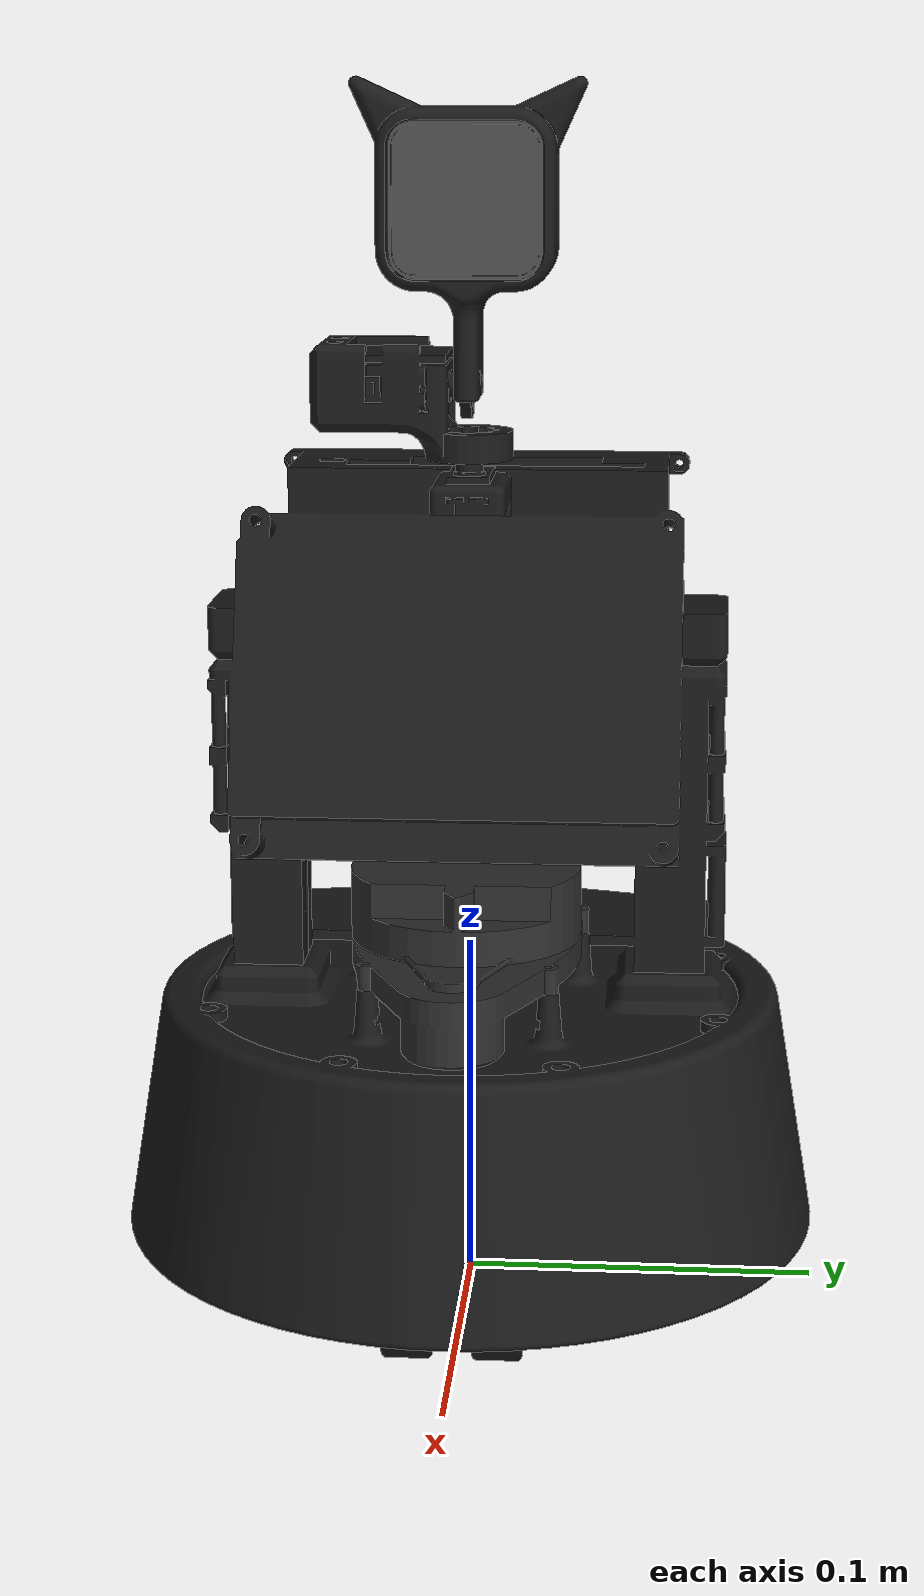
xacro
<?xml version="1.0" ?>
<robot name="nekomimi_bot" xmlns:xacro="http://www.ros.org/wiki/xacro">

  <!-- Add Common Xacro: transmissions, colors -->
  <xacro:include filename="$(find nekomimi_bot_description)/urdf/materials.urdf.xacro" />
  <xacro:include filename="$(find nekomimi_bot_description)/urdf/controllers.urdf.xacro" />
  <xacro:include filename="$(find nekomimi_bot_description)/urdf/values.xacro" />

  <!-- Add URDF: links, joints -->
  <xacro:include filename="$(find nekomimi_bot_description)/urdf/mobile_base/base.urdf.xacro" />
  <xacro:include filename="$(find nekomimi_bot_description)/urdf/body/body.urdf.xacro" />
  <xacro:include filename="$(find nekomimi_bot_description)/urdf/mobile_base/wheel_base.urdf.xacro" />
  <xacro:include filename="$(find nekomimi_bot_description)/urdf/mobile_base/wheel.urdf.xacro" />
  <xacro:include filename="$(find nekomimi_bot_description)/urdf/head/head.urdf.xacro" />
  <xacro:include filename="$(find nekomimi_bot_description)/urdf/sensor/lidar.urdf.xacro" />
  <xacro:include filename="$(find nekomimi_bot_description)/urdf/sensor/camera.urdf.xacro" />

  <xacro:include filename="$(find nekomimi_bot_description)/urdf/gazebo.urdf.xacro" />

  <!-- Add variables -->
  <xacro:arg name="enable_gz"                 default="False" />
  <xacro:arg name="robot_name"                default="nekomimi_bot" />
  <xacro:arg name="enable_gz_lidar"           default="True" />
  <xacro:arg name="ftc_sl_port"               default="/dev/ttyUSB0" />

  <!-- Conection -->
  <xacro:base/>
  <xacro:body_plate prefix="body_plate" parent="base_footprint" />
  <xacro:body_roll  prefix="body_roll"  parent="body_plate" />
  <xacro:wheel      prefix="wheel"      parent="body_roll" />
  <xacro:head       prefix="head"       parent="body_plate" />
  <xacro:lidar                          parent="body_plate" />
  <xacro:camera                         parent="head_tilt" />

  <!-- Add Feetech plugins -->
  <xacro:controllers name="joints_control" enable_gz="$(arg enable_gz)" robot_name="$(arg robot_name)" />

  <xacro:if value="$(arg enable_gz)">
    <xacro:gazebo_sensors robot_name="$(arg robot_name)"
      enable_gz_lidar="$(arg enable_gz_lidar)"
    />
  </xacro:if>

</robot>

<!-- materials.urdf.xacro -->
<robot name="nekomimi_bot"
       xmlns:xacro="http://www.ros.org/wiki.xacro">

  <material name="wheel">
    <color rgba="0.2 0.2 0.2 1.0" />
  </material>

  <material name="black">
    <color rgba="0.1 0.1 0.1 1.0" />
  </material>

  <material name="red">
    <color rgba="1.0 0.0 0.0 1.0" />
  </material>

  <material name="green">
    <color rgba="0.0 1.0 0.0 1.0" />
  </material>

  <material name="blue">
    <color rgba="0.0 0.0 1.0 1.0" />
  </material>

  <material name="white">
    <color rgba="1.0 1.0 1.0 1.0" />
  </material>

  <material name="grey">
    <color rgba="0.3 0.3 0.3 1.0" />
  </material>

  <material name="dark_grey">
    <color rgba="0.175 0.175 0.175 1.0" />
  </material>

</robot>

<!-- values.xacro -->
<robot name="nekomimi_bot_values"
       xmlns:xacro="http://www.ros.org/wiki.xacro">

  <xacro:property name="M_PI" value="3.14159265359" />

</robot>

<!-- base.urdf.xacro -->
<robot name="nekomimi_bot"
       xmlns:xacro="http://ros.org/wiki/xacro" >
  <xacro:macro name="base" >

    <link name="base_footprint" />

  </xacro:macro>
</robot>

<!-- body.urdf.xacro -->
<robot name="nekomimi_bot"
       xmlns:xacro="http://ros.org/wiki/xacro" >
  <xacro:macro name="body_plate" params="prefix parent">

    <joint name="${prefix}_joint" type="fixed">
      <origin xyz="0.0 0.0 0.035" rpy="0.0 0.0 0.0" />
      <parent link="${parent}" />
      <child link="${prefix}_link" />
    </joint>

    <link name="${prefix}_link">
      <visual>
        <origin xyz="0.0 0.0 0.0" rpy="0.0 0.0 ${M_PI/2}" />
        <geometry>
          <mesh filename="package://nekomimi_bot_description/meshes/body/body_core.stl" scale="0.001 0.001 0.001" />
        </geometry>
        <material name="black" />
      </visual>
      <collision>
        <origin xyz="0.0 0.0 0.017" rpy="0.0 0.0 0.0" />
        <geometry>
          <cylinder radius="0.0982680435950569" length="0.070"/>
        </geometry>
      </collision>
      <collision>
        <origin xyz="0.0 0.0 0.105" rpy="0.0 0.0 0.0" />
        <geometry>
          <box size="0.02 0.145 0.112" />
        </geometry>
      </collision>
      <inertial>
        <origin xyz="0.0 0.0 0.0" rpy="0.0 0.0 0.0" />
        <mass value="1.0" />
        <inertia ixx="0.001" ixy="0.0" ixz="0.0"
                 iyy="0.001" iyz="0.0"
                 izz="0.001"/>
      </inertial>
    </link>

    <joint name="${prefix}_cover_joint" type="fixed">
      <origin xyz="0.0 0.0 0.035" rpy="0.0 0.0 0.0" />
      <parent link="${parent}" />
      <child link="${prefix}_cover_link" />
    </joint>

    <link name="${prefix}_cover_link">
      <visual>
        <origin xyz="0.0 0.0 0.0" rpy="0.0 0.0 ${M_PI/2}" />
        <geometry>
          <mesh filename="package://nekomimi_bot_description/meshes/body/body_cover.stl" scale="0.001 0.001 0.001" />
        </geometry>
        <material name="black" />
      </visual>
    </link>
  </xacro:macro>
</robot>

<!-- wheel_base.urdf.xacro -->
<robot name="nekomimi_bot"
       xmlns:xacro="http://ros.org/wiki/xacro">

  <xacro:macro name="body_roll" params="parent prefix">

    <joint name="${prefix}_joint" type="revolute">
      <origin xyz="0.0 0.0 0.0" rpy="0.0 0.0 0.0" />
      <parent link="${parent}_link" />
      <child link="${prefix}_link" />
      <axis xyz="0.0 0.0 1.0 " />
      <limit lower="${-M_PI/2}" upper="${M_PI/2}" effort="4.1" velocity="4.796165" />
    </joint>

    <link name="${prefix}_link">
      <visual>
        <origin xyz="0.0 0.0 0.0" rpy="0.0 0.0 ${M_PI/2}" />
        <geometry>
          <mesh filename="package://nekomimi_bot_description/meshes/mobile_base/wheel_controller_core.stl" scale="0.001 0.001 0.001" />
        </geometry>
        <material name="black" />
      </visual>
      <collision>
        <origin xyz="0.062 0.0 -0.02" rpy="0.0 0.0 0.0" />
        <geometry>
          <sphere radius="0.0146"/>
        </geometry>
      </collision>
      <collision>
        <origin xyz="-0.062 0.0 -0.02" rpy="0.0 0.0 0.0" />
        <geometry>
          <sphere radius="0.0146"/>
        </geometry>
      </collision>
      <inertial>
        <origin xyz="0.0 0.0 0.0" rpy="0.0 0.0 0.0" />
        <mass value="1.0" />
        <inertia ixx="0.001" ixy="0.0" ixz="0.0"
                 iyy="0.001" iyz="0.0"
                 izz="0.001"/>
      </inertial>
    </link>

  </xacro:macro>
</robot>

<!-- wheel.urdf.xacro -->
<robot name="nekomimi_bot"
       xmlns:xacro="http://ros.org/wiki/xacro">

  <xacro:macro name="wheel_base" params="parent prefix pose_yaw axis_y">

    <joint name="${prefix}_joint" type="continuous">
      <origin xyz="0.0 ${axis_y*0.0725} -0.01" rpy="0.0 0.0 0.0" />
      <parent link="${parent}" />
      <child link="${prefix}_link" />
      <axis xyz="0.0 1.0 0.0 " />
      <limit effort="10.0" velocity="15.913672" />
    </joint>

    <link name="${prefix}_link">
      <visual>
        <origin xyz="0.0 0.0 0.0" rpy="0.0 0.0 ${pose_yaw}" />
        <geometry>
          <mesh filename="package://nekomimi_bot_description/meshes/mobile_base/wheel.stl" scale="0.001 0.001 0.001" />
        </geometry>
        <material name="wheel" />
      </visual>
      <collision>
        <origin xyz="0.0 0.0 0.0" rpy="${axis_y*M_PI/2} 0.0 0.0" />
        <geometry>
          <cylinder radius="0.025" length="0.01"/>
        </geometry>
      </collision>
      <inertial>
        <origin xyz="0.0 0.0 0.0" rpy="0.0 0.0 0.0" />
        <mass value="1.0" />
        <inertia ixx="0.001" ixy="0.0" ixz="0.0"
                 iyy="0.001" iyz="0.0"
                 izz="0.001"/>
      </inertial>
    </link>

  </xacro:macro>

  <xacro:macro name="wheel" params="parent prefix">
    <xacro:wheel_base parent="${parent}_link" prefix="left_${prefix}"  pose_yaw="${M_PI/2}"  axis_y="1.0"  />
    <xacro:wheel_base parent="${parent}_link" prefix="right_${prefix}" pose_yaw="${-M_PI/2}" axis_y="-1.0" />
  </xacro:macro>

</robot>

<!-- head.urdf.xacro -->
<robot name="nekomimi_bot"
       xmlns:xacro="http://ros.org/wiki/xacro" >
  <xacro:macro name="head_base" params="prefix parent">

    <joint name="${prefix}_joint" type="fixed">
      <origin xyz="0.0 0.0 0.1599" rpy="0.0 0.0 0.0" />
      <parent link="${parent}" />
      <child link="${prefix}_link" />
    </joint>

    <link name="${prefix}_link">
      <visual>
        <origin xyz="0.0 0.0 0.0" rpy="0.0 0.0 ${M_PI/2}" />
        <geometry>
          <mesh filename="package://nekomimi_bot_description/meshes/head/head_base.stl" scale="0.001 0.001 0.001" />
        </geometry>
        <material name="black" />
      </visual>
      <collision>
        <origin xyz="-0.00529 0.0 0.035" rpy="0.0 0.0 0.0" />
        <geometry>
          <box size="0.032 0.021 0.069" />
        </geometry>
      </collision>
      <inertial>
        <origin xyz="0.0 0.0 0.0" rpy="0.0 0.0 0.0" />
        <mass value="1.0" />
        <inertia ixx="0.001" ixy="0.0" ixz="0.0"
                 iyy="0.001" iyz="0.0"
                 izz="0.001"/>
      </inertial>
    </link>
  </xacro:macro>

  <xacro:macro name="head_pan" params="prefix parent">

    <joint name="${prefix}_joint" type="revolute">
      <origin xyz="0.0 0.0 0.0454" rpy="0.0 0.0 0.0" />
      <parent link="${parent}" />
      <child link="${prefix}_link" />
      <axis xyz="0.0 0.0 1.0 " />
      <limit lower="${-M_PI/2}" upper="${M_PI}" effort="4.1" velocity="4.796165" />
    </joint>

    <link name="${prefix}_link">
      <visual>
        <origin xyz="0.0 0.0 0.0" rpy="0.0 0.0 ${M_PI/2}" />
        <geometry>
          <mesh filename="package://nekomimi_bot_description/meshes/head/head_tilt_base.stl" scale="0.001 0.001 0.001" />
        </geometry>
        <material name="black" />
      </visual>
      <inertial>
        <origin xyz="0.0 0.0 0.0" rpy="0.0 0.0 0.0" />
        <mass value="1.0" />
        <inertia ixx="0.001" ixy="0.0" ixz="0.0"
                 iyy="0.001" iyz="0.0"
                 izz="0.001"/>
      </inertial>
    </link>
  </xacro:macro>

  <xacro:macro name="head_tilt" params="prefix parent">

    <joint name="${prefix}_joint" type="revolute">
      <origin xyz="0.0 0.0 0.01975" rpy="0.0 0.0 0.0" />
      <parent link="${parent}" />
      <child link="${prefix}_link" />
      <axis xyz="0.0 1.0 0.0 " />
      <limit lower="${-2*M_PI/3}" upper="${2*M_PI/3}" effort="4.1" velocity="4.796165" />
    </joint>

    <link name="${prefix}_link">
      <visual>
        <origin xyz="0.0 0.0 0.0" rpy="0.0 0.0 ${M_PI/2}" />
        <geometry>
          <mesh filename="package://nekomimi_bot_description/meshes/head/camera_base.stl" scale="0.001 0.001 0.001" />
        </geometry>
        <material name="black" />
      </visual>
    </link>
  </xacro:macro>

  <xacro:macro name="head" params="parent prefix">
    <xacro:head_base parent="${parent}_link" prefix="${prefix}" />
    <xacro:head_pan  parent="${prefix}_link" prefix="${prefix}_pan" />
    <xacro:head_tilt parent="${prefix}_pan_link" prefix="${prefix}_tilt" />
  </xacro:macro>
</robot>

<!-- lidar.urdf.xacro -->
<robot name="nekomimi_bot"
       xmlns:xacro="http://ros.org/wiki/xacro" >

  <xacro:macro name="lidar" params="parent">

    <joint name="lidar" type="fixed">
      <origin xyz="0.01464224 0.0 0.08705" rpy="0.0 0.0 0.0" />
      <parent link="${parent}_link" />
      <child link="lidar_link" />
    </joint>

    <link name="lidar_link">
      <visual>
        <origin xyz="0.0 0.0 -0.02215" rpy="0.0 0.0 0.0" />
        <geometry>
          <mesh filename="package://nekomimi_bot_description/meshes/sensor/lds_lidar.stl" scale="0.001 0.001 0.001" />
        </geometry>
        <material name="dark_grey" />
      </visual>
      <collision>
        <origin xyz="0.0 0.0 -0.0072" rpy="0.0 0.0 0.0" />
        <geometry>
          <cylinder radius="0.0325" length="0.0271"/>
        </geometry>
      </collision>
      <inertial>
        <origin xyz="0.0 0.0 0.0" rpy="0.0 0.0 0.0" />
        <mass value="1.0" />
        <inertia ixx="0.001" ixy="0.0" ixz="0.0"
                 iyy="0.001" iyz="0.0"
                 izz="0.001"/>
      </inertial>
    </link>
  </xacro:macro>

</robot>

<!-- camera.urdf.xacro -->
<robot name="nekomimi_bot"
       xmlns:xacro="http://ros.org/wiki/xacro" >

  <xacro:macro name="camera" params="parent">

    <joint name="realsense_d405" type="fixed">
      <origin xyz="0.01317988 0.009 0.0515" rpy="0.0 0.0 0.0" />
      <parent link="${parent}_link" />
      <child link="head_camera_link" />
    </joint>

    <link name="head_camera_link">
      <visual>
        <origin xyz="-0.00007 -0.009 ${0.021-0.021}" rpy="${M_PI/2} 0.0 ${M_PI/2}" />
        <geometry>
          <mesh filename="package://nekomimi_bot_description/meshes/sensor/realsense_d405.stl" scale="0.001 0.001 0.001" />
        </geometry>
        <material name="grey" />
      </visual>
      <collision>
        <origin xyz="-0.0095 -0.009 0.0035" rpy="0.0 0.0 0.0" />
        <geometry>
          <box size="0.027 0.049 0.049" />
        </geometry>
      </collision>
      <inertial>
        <origin xyz="0.0 0.0 0.0" rpy="0.0 0.0 0.0" />
        <mass value="1.0" />
        <inertia ixx="0.001" ixy="0.0" ixz="0.0"
                 iyy="0.001" iyz="0.0"
                 izz="0.001"/>
      </inertial>
    </link>
  </xacro:macro>

</robot>
